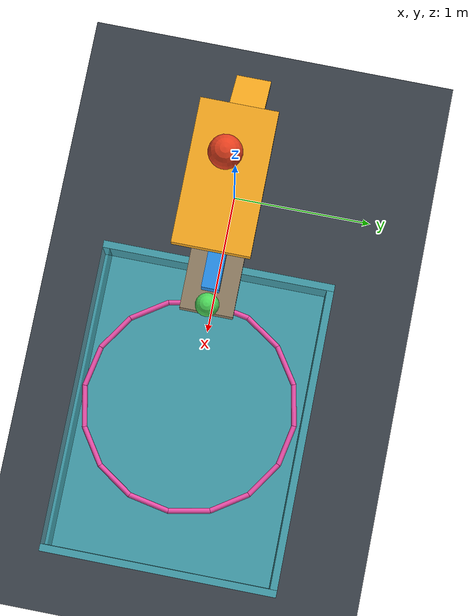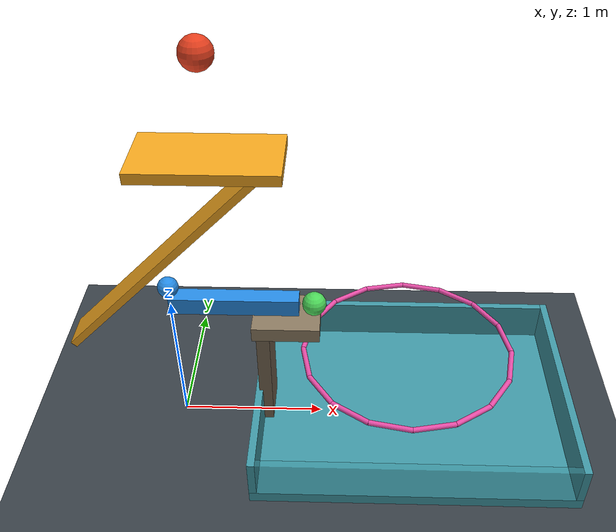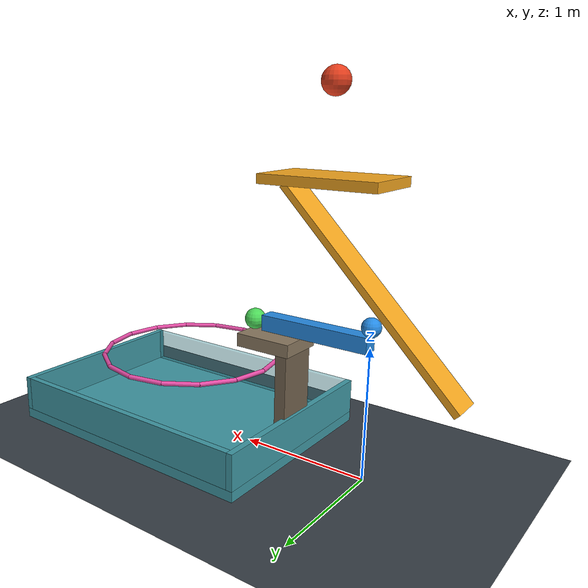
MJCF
<mujoco model="trigger_wedge_cart_drop">
  <compiler angle="degree"/>
  <option timestep="0.002" gravity="0 0 -9.81" integrator="implicitfast" solver="Newton" iterations="80"/>
  <size njmax="1000" nconmax="300"/>
  <statistic center="1.0 0 1.2" extent="3.6"/>

  <visual>
    <headlight ambient="0.35 0.35 0.35" diffuse="0.7 0.7 0.7" specular="0.2 0.2 0.2"/>
  </visual>

  <worldbody>
    <light name="main_light" pos="0 -3 5" dir="0 0.5 -1"/>
    <geom name="floor" type="plane" size="5 5 0.1" rgba="0.22 0.25 0.28 1" friction="0.8 0.02 0.01" condim="6"/>

    <!-- The trigger's bottom starts exactly 0.5 m above the wedge cap. -->
    <body name="trigger" pos="0.35 0 2.75">
      <freejoint name="trigger_free"/>
      <geom name="trigger_ball" type="sphere" size="0.10" mass="5" rgba="0.9 0.25 0.12 1" friction="0.6 0.01 0.005" condim="6" solref="0.012 1"/>
    </body>

    <!-- Static joint friction holds the wedge until the trigger arrives. -->
    <!-- The inclined face rises toward +x, so descending motion drives the follower toward +x. -->
    <body name="wedge" pos="0 0 1.4">
      <joint name="wedge_slide" type="slide" axis="0 0 -1" limited="true" range="0 0.51" frictionloss="15" damping="4"/>
      <geom name="wedge_incline" type="box" size="0.95 0.12 0.025" quat="0.923879533 0 -0.382683432 0" mass="0.75" rgba="0.95 0.65 0.12 1" friction="0.025 0.001 0.001" condim="3" solref="0.012 1"/>
      <geom name="wedge_cap" type="box" pos="0.35 0 0.715" size="0.45 0.24 0.035" mass="0.25" rgba="0.95 0.65 0.12 1" friction="0.6 0.01 0.005" condim="6" solref="0.012 1"/>
    </body>

    <body name="cart" pos="0 0 1.15">
      <joint name="cart_slide" type="slide" axis="1 0 0" limited="true" range="0 0.40" damping="60"/>
      <geom name="cart_follower" type="sphere" size="0.07" mass="0.6" rgba="0.15 0.55 0.9 1" friction="0.025 0.001 0.001" condim="3" solref="0.012 1"/>
      <geom name="cart_striker" type="box" pos="0.43 0 -0.12" size="0.43 0.06 0.06" mass="2.4" rgba="0.15 0.55 0.9 1" friction="0.5 0.01 0.005" condim="6" solref="0.012 1"/>
    </body>

    <body name="block" pos="0.96 0 1.03">
      <freejoint name="block_free"/>
      <geom name="block_payload" type="sphere" size="0.08" mass="0.25" rgba="0.3 0.85 0.35 1" friction="0.8 0.02 0.01" condim="6" solref="0.012 1"/>
    </body>

    <body name="ledge" pos="0.775 0 0.9">
      <geom name="ledge_top" type="box" size="0.225 0.18 0.05" rgba="0.55 0.48 0.38 1" friction="0.5 0.01 0.003" condim="6" solref="0.012 1"/>
      <geom name="ledge_support" type="box" pos="-0.155 0 -0.475" size="0.045 0.16 0.425" rgba="0.45 0.39 0.31 1"/>
    </body>

    <!-- A horizontal ring assembled entirely from primitive capsules. -->
    <body name="hoop" pos="1.60 0 0.62">
      <geom name="hoop_00" type="capsule" fromto="0.72 0 0 0.665193 0.275532 0" size="0.018" rgba="0.9 0.3 0.65 1"/>
      <geom name="hoop_01" type="capsule" fromto="0.665193 0.275532 0 0.509117 0.509117 0" size="0.018" rgba="0.9 0.3 0.65 1"/>
      <geom name="hoop_02" type="capsule" fromto="0.509117 0.509117 0 0.275532 0.665193 0" size="0.018" rgba="0.9 0.3 0.65 1"/>
      <geom name="hoop_03" type="capsule" fromto="0.275532 0.665193 0 0 0.72 0" size="0.018" rgba="0.9 0.3 0.65 1"/>
      <geom name="hoop_04" type="capsule" fromto="0 0.72 0 -0.275532 0.665193 0" size="0.018" rgba="0.9 0.3 0.65 1"/>
      <geom name="hoop_05" type="capsule" fromto="-0.275532 0.665193 0 -0.509117 0.509117 0" size="0.018" rgba="0.9 0.3 0.65 1"/>
      <geom name="hoop_06" type="capsule" fromto="-0.509117 0.509117 0 -0.665193 0.275532 0" size="0.018" rgba="0.9 0.3 0.65 1"/>
      <geom name="hoop_07" type="capsule" fromto="-0.665193 0.275532 0 -0.72 0 0" size="0.018" rgba="0.9 0.3 0.65 1"/>
      <geom name="hoop_08" type="capsule" fromto="-0.72 0 0 -0.665193 -0.275532 0" size="0.018" rgba="0.9 0.3 0.65 1"/>
      <geom name="hoop_09" type="capsule" fromto="-0.665193 -0.275532 0 -0.509117 -0.509117 0" size="0.018" rgba="0.9 0.3 0.65 1"/>
      <geom name="hoop_10" type="capsule" fromto="-0.509117 -0.509117 0 -0.275532 -0.665193 0" size="0.018" rgba="0.9 0.3 0.65 1"/>
      <geom name="hoop_11" type="capsule" fromto="-0.275532 -0.665193 0 0 -0.72 0" size="0.018" rgba="0.9 0.3 0.65 1"/>
      <geom name="hoop_12" type="capsule" fromto="0 -0.72 0 0.275532 -0.665193 0" size="0.018" rgba="0.9 0.3 0.65 1"/>
      <geom name="hoop_13" type="capsule" fromto="0.275532 -0.665193 0 0.509117 -0.509117 0" size="0.018" rgba="0.9 0.3 0.65 1"/>
      <geom name="hoop_14" type="capsule" fromto="0.509117 -0.509117 0 0.665193 -0.275532 0" size="0.018" rgba="0.9 0.3 0.65 1"/>
      <geom name="hoop_15" type="capsule" fromto="0.665193 -0.275532 0 0.72 0 0" size="0.018" rgba="0.9 0.3 0.65 1"/>
    </body>

    <body name="box" pos="1.65 0 0">
      <geom name="box_bottom" type="box" pos="0 0 0.04" size="1.10 0.825 0.04" rgba="0.25 0.6 0.65 1" friction="0.8 0.02 0.01" condim="6" solref="0.015 1"/>
      <geom name="box_left" type="box" pos="-1.075 0 0.22" size="0.025 0.825 0.14" rgba="0.25 0.6 0.65 1" friction="0.8 0.02 0.01" condim="6" solref="0.015 1"/>
      <geom name="box_right" type="box" pos="1.075 0 0.22" size="0.025 0.825 0.14" rgba="0.25 0.6 0.65 1" friction="0.8 0.02 0.01" condim="6" solref="0.015 1"/>
      <geom name="box_front" type="box" pos="0 -0.8 0.22" size="1.05 0.025 0.14" rgba="0.25 0.6 0.65 0.45" friction="0.8 0.02 0.01" condim="6" solref="0.015 1"/>
      <geom name="box_back" type="box" pos="0 0.8 0.22" size="1.05 0.025 0.14" rgba="0.25 0.6 0.65 1" friction="0.8 0.02 0.01" condim="6" solref="0.015 1"/>
    </body>
  </worldbody>

  <keyframe>
    <key name="start"/>
  </keyframe>
</mujoco>
